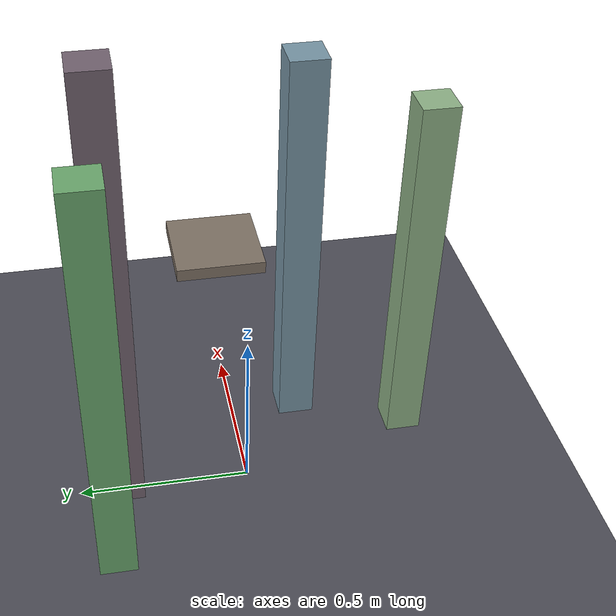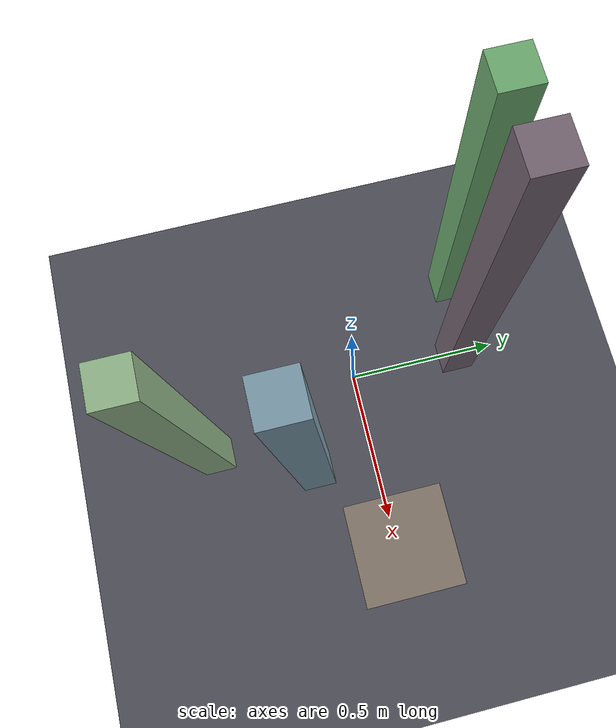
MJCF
<mujoco model="pillar_avoid_11">
  <compiler angle="radian" autolimits="true" boundmass="0" balanceinertia="true"/>
  <option impratio="10" gravity="0 0 -9.8" integrator="implicitfast" cone="elliptic" jacobian="sparse" noslip_iterations="4">
    <flag multiccd="enable" contact="enable" warmstart="enable"/>
  </option>
  <size njmax="6000" nconmax="6000"/>
  <visual><global offwidth="1280" offheight="720"/><map znear="0.001"/>
    <headlight ambient="0.45 0.45 0.45" diffuse="0.6 0.6 0.6"/></visual>
  <worldbody>
    <light pos="0.4 0.4 3" dir="0 0 -1" diffuse="0.7 0.7 0.7"/>
    <!-- Obstacle-avoidance variant 11: 4 tall PHYSICAL pillars; placements blocking >10%
         of exo-camera sightlines to the arm excluded (training view preserved). -->
    <body name="pillars" pos="0 0 0"><geom name="floor" type="plane" size="5 5 0.1" pos="0 0 0" rgba="0.30 0.30 0.34 1" contype="8" conaffinity="15"/><geom name="obj_pad" type="box" pos="0.60 0 0.42" size="0.14 0.14 0.02" rgba="0.5 0.45 0.4 1" contype="8" conaffinity="15"/><geom name="pillar_0" type="box" pos="0.292 -0.201 0.610" size="0.054 0.054 0.610" contype="8" conaffinity="15" rgba="0.47 0.59 0.65 1"/><geom name="pillar_2" type="box" pos="0.160 -0.519 0.562" size="0.052 0.052 0.562" contype="8" conaffinity="15" rgba="0.56 0.70 0.53 1"/><geom name="pillar_3" type="box" pos="0.007 0.365 0.688" size="0.053 0.053 0.688" contype="8" conaffinity="15" rgba="0.45 0.39 0.44 1"/><geom name="pillar_4" type="box" pos="-0.255 0.412 0.618" size="0.053 0.053 0.618" contype="8" conaffinity="15" rgba="0.42 0.66 0.43 1"/></body>
  </worldbody>
</mujoco>
